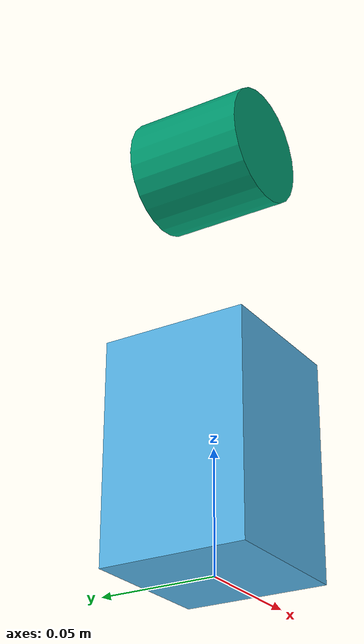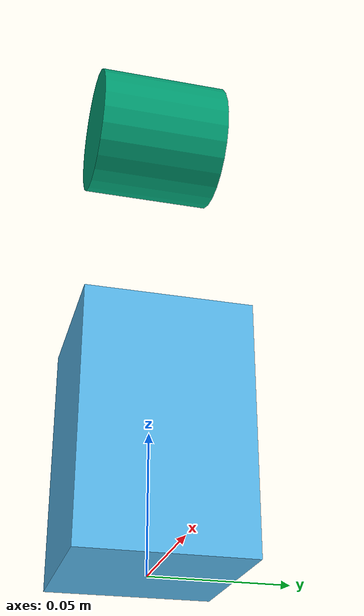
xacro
<robot xmlns:xacro="http://www.ros.org/wiki/xacro" name="reaction_wheel">

    <xacro:property name="l" value="0.18"/>
    <xacro:arg name="use_simulation" default="true"/>

    <link name="world"/>
    <link name="base_link">
        <inertial>
            <mass value="13.079909"/>
            <origin xyz="0 0 0"/>
            <inertia ixx="7.774e-1" ixy="-3.780e-3" ixz="8.217e-3" iyy="8.435e-1"
                     iyz="1.434e-2" izz="3.156e-1"/>
        </inertial>
        <visual>
            <origin xyz="0 0 0.045" rpy="0 0 0"/>
            <geometry>
                <box size="0.06 0.06 0.09"/>
            </geometry>
        </visual>
        <collision>
            <origin xyz="0 0 0.08" rpy="0 0 0"/>
            <geometry>
                <box size="0.06 0.06 0.09"/>
            </geometry>
        </collision>
    </link>

    <link name="reaction_wheel">
        <inertial>
            <mass value="0.41"/>
            <origin xyz="0 0 0"/>
            <inertia ixx="0" ixy="0" ixz="0" iyy="1.795e-3" iyz="0" izz="0"/>
        </inertial>
        <visual>
            <origin xyz="0 0 0" rpy="1.57 0 0"/>
            <geometry>
                <cylinder length="0.05" radius="0.025"/>
            </geometry>
        </visual>
        <collision>
            <origin xyz="0 0 0.03" rpy="1.57 0 0"/>
            <geometry>
                <cylinder length="0.05" radius="0.02"/>
            </geometry>
        </collision>
    </link>

    <joint name="base_joint" type="revolute">
        <axis xyz="0 1 0"/>
        <parent link="world"/>
        <child link="base_link"/>
        <origin xyz="0 0 0" rpy="0 0 0"/>
        <limit effort="6" velocity="70" lower="-1e9" upper="1e9"/>
    </joint>

    <joint name="reaction_wheel_joint" type="revolute">
        <axis xyz="0 1 0"/>
        <origin xyz="0 0 0.18" rpy="0 0 0"/>
        <parent link="base_link"/>
        <child link="reaction_wheel"/>
        <limit effort="3" velocity="76" lower="-1e9" upper="1e9"/>
    </joint>

    <xacro:include filename="$(find rm_description)/urdf/common/imu.urdf.xacro"/>
    <xacro:IMU connected_to="base_link" imu_name="base_imu" xyz="0 0 0.05" rpy="0 0 0"/>

    <transmission name="trans_reaction_wheel_joint">
        <type>transmission_interface/SimpleTransmission</type>
        <actuator name="reaction_wheel_joint_motor">
            <mechanicalReduction>1</mechanicalReduction>
        </actuator>
        <joint name="reaction_wheel_joint">
            <offset>0</offset>
            <hardwareInterface>hardware_interface/EffortJointInterface</hardwareInterface>
        </joint>
    </transmission>

    <xacro:if value="$(arg use_simulation)">
        <gazebo>
            <plugin name="rm_ros_control" filename="librm_robot_hw_sim.so">
                <robotNamespace>/</robotNamespace>
                <robotSimType>rm_gazebo/RmRobotHWSim</robotSimType>
            </plugin>
        </gazebo>
    </xacro:if>

</robot>

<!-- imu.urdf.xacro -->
<robot xmlns:xacro="http://www.ros.org/wiki/xacro" name="imu">
    <xacro:macro name="IMU" params="connected_to imu_name xyz:='0 0 0' rpy:='0 0 0' ">
        <!-- Imu is fixed to the base link -->
        <joint name="${imu_name}_joint" type="fixed">
            <origin xyz="${xyz}" rpy="${rpy}"/>
            <parent link="${connected_to}"/>
            <child link="${imu_name}"/>
        </joint>
        <!-- Imu link -->
        <link name="${imu_name}">
            <inertial>
                <mass value="0.001"/>
                <origin rpy="0 0 0" xyz="0 0 0"/>
                <inertia ixx="0.0001" ixy="0" ixz="0" iyy="0.000001" iyz="0" izz="0.0001"/>
            </inertial>
            <visual>
                <origin rpy="0 0 0" xyz="0 0 0"/>
                <geometry>
                    <box size="0.015 0.015 0.004"/>
                </geometry>
            </visual>
            <material name="orange">
                <color rgba="255 108 10 255"/>
            </material>
        </link>
        <gazebo reference="${imu_name}">
            <material>Gazebo/Orange</material>
        </gazebo>
        <gazebo reference="${imu_name}_joint">
            <disableFixedJointLumping>true</disableFixedJointLumping>
        </gazebo>
    </xacro:macro>
</robot>
